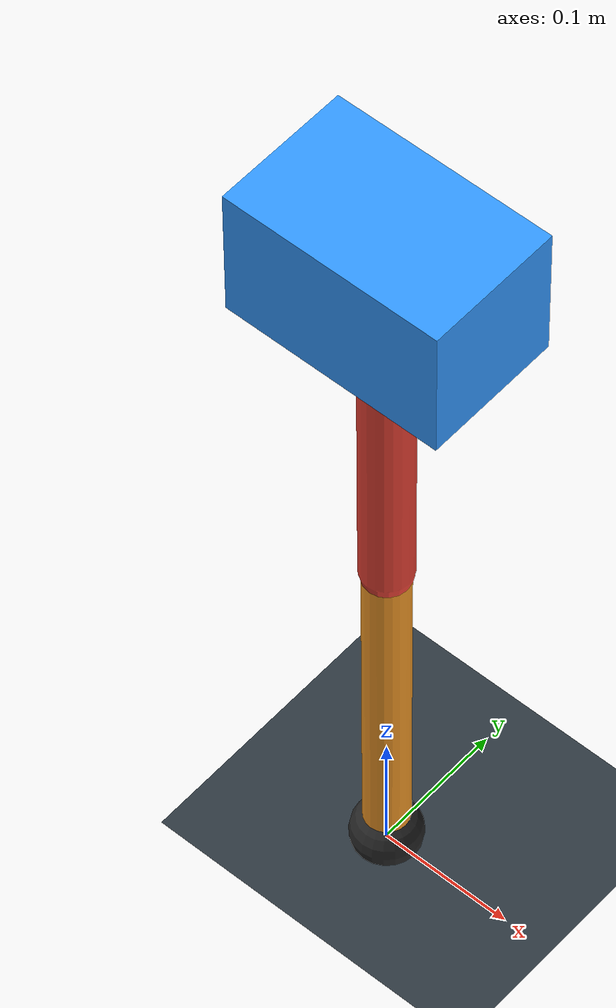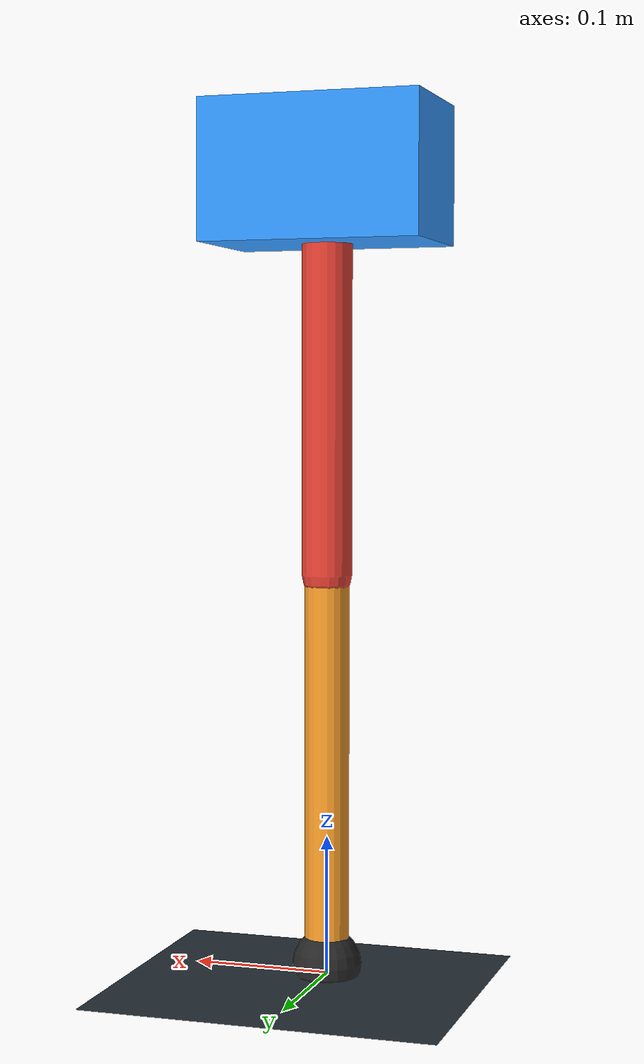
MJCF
<mujoco model="single_axis_two_bar">
  <compiler angle="radian" inertiafromgeom="true"/>
  <option timestep="0.001" integrator="implicitfast" gravity="0 0 -9.81"/>
  <default>
    <joint damping="0.08"/>
    <geom friction="1.2 0.01 0.0001" condim="3"/>
  </default>
  <worldbody>
    <geom name="floor" type="plane" size="5 5 0.1" rgba="0.18 0.22 0.25 1"/>
    <body name="carriage" pos="0 0 0.5763268857594875">
      <joint name="pole_slide" type="slide" axis="0 0 1"/>
      <geom name="payload" type="box" size="0.08 0.05 0.05" mass="2.5809649268849197" rgba="0.2 0.6 1 1"/>
      <body name="thigh" pos="0 0 0">
        <joint name="hip" type="hinge" axis="0 1 0"/>
        <geom name="thigh_link" type="capsule" fromto="0 0 0 0 0 -0.286050748410113" size="0.018" mass="0.2038149380693578" rgba="0.9 0.25 0.2 1"/>
        <body name="shank" pos="0 0 -0.286050748410113">
          <joint name="knee" type="hinge" axis="0 1 0"/>
          <geom name="shank_link" type="capsule" fromto="0 0 0 0 0 -0.28232748433162674" size="0.016" mass="0.20116206321484223" rgba="0.95 0.6 0.15 1"/>
          <geom name="foot" type="sphere" pos="0 0 -0.28232748433162674" size="0.025" mass="0.03" rgba="0.15 0.15 0.15 1"/>
          <site name="toe" pos="0 0 -0.28232748433162674" size="0.008"/>
        </body>
      </body>
    </body>
  </worldbody>
  <actuator>
    <motor name="hip_motor" joint="hip" ctrlrange="-25.095982392868578 25.095982392868578"/>
    <motor name="knee_motor" joint="knee" ctrlrange="-75.02080178090841 75.02080178090841"/>
  </actuator>
</mujoco>
